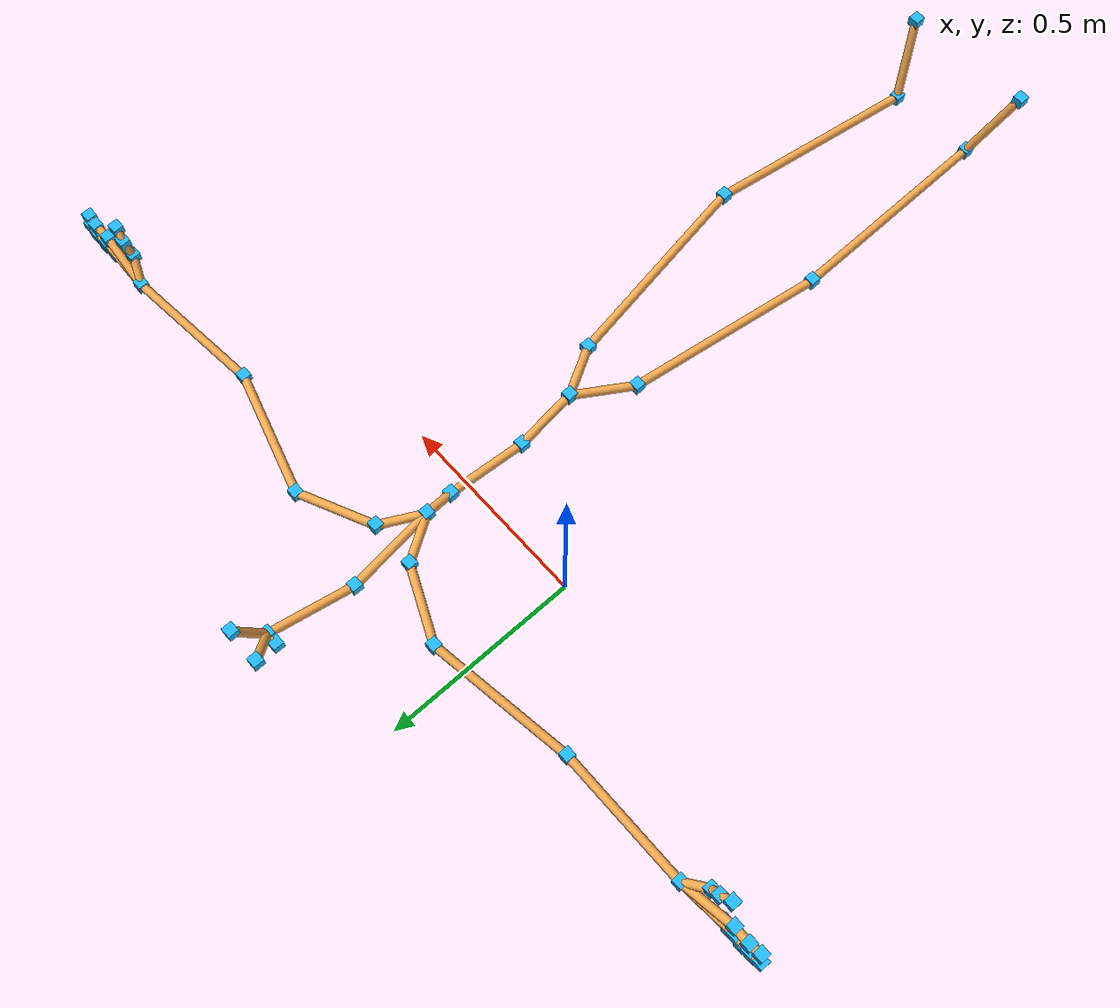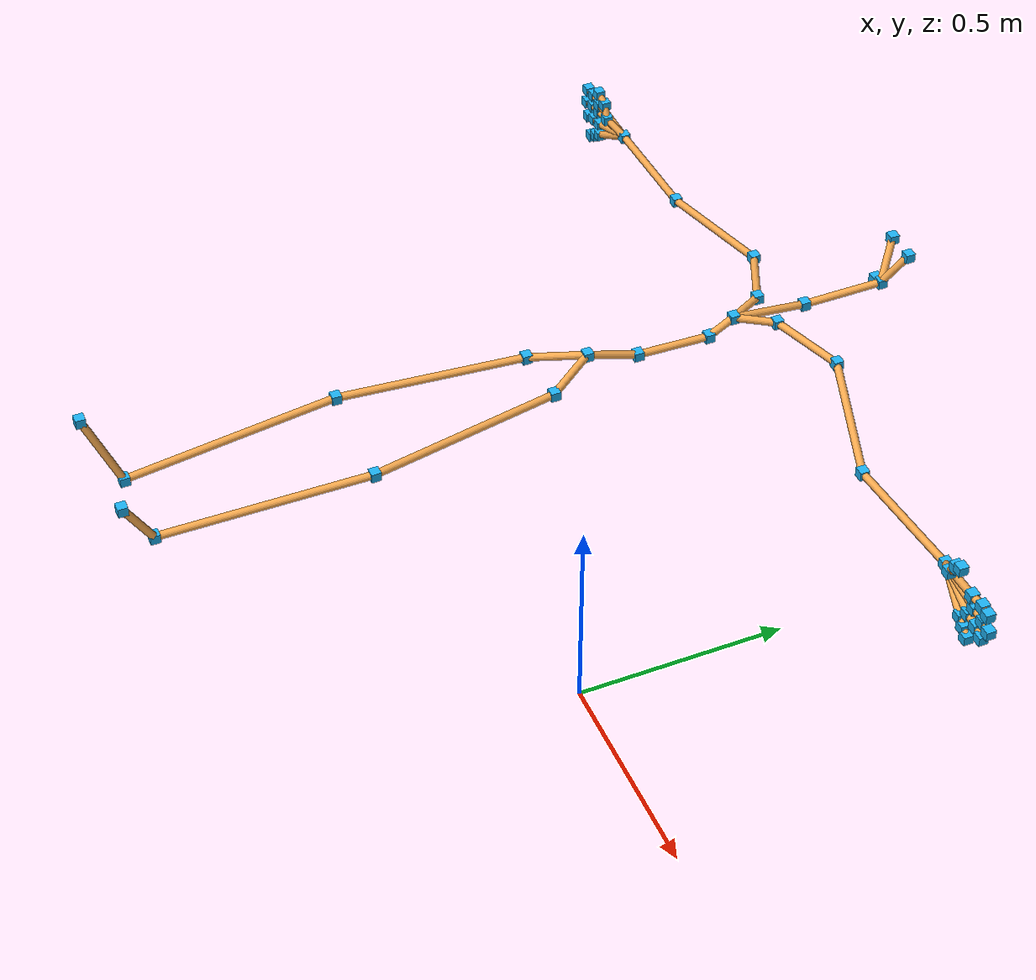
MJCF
<?xml version="1.0" encoding="UTF-8"?>
<mujoco model="smplx_male_skeleton">
  <compiler angle="radian" coordinate="local"/>
  <option timestep="0.002" gravity="0 0 -9.81"/>
  <default>
    <joint damping="1.0" armature="0.01" limited="false"/>
    <geom contype="0" conaffinity="0"/>
  </default>
  <worldbody>
    <body name="pelvis" pos="0 0 1">
      <freejoint name="root_free"/>
      <geom name="pelvis_joint" type="box" size="0.010 0.010 0.010" rgba="0.12 0.70 0.95 1"/>
      <geom name="bone_pelvis_l_hip" type="capsule" fromto="0 0 0 0.056144 -0.094542 -0.023475" size="0.008" rgba="0.95 0.65 0.30 1"/>
      <body name="l_hip" pos="0.056144 -0.094542 -0.023475">
        <joint name="l_hip_ball" type="ball" limited="true" range="0 1.40"/>
        <geom name="l_hip_joint" type="box" size="0.010 0.010 0.010" rgba="0.12 0.70 0.95 1"/>
        <geom name="bone_l_hip_l_knee" type="capsule" fromto="0 0 0 0.067229 -0.396868 -0.006654" size="0.008" rgba="0.95 0.65 0.30 1"/>
        <body name="l_knee" pos="0.067229 -0.396868 -0.006654">
          <joint name="l_knee_ball" type="hinge" axis="1 0 0" limited="true" range="0 2.44"/>
          <geom name="l_knee_joint" type="box" size="0.010 0.010 0.010" rgba="0.12 0.70 0.95 1"/>
          <geom name="bone_l_knee_l_ankle" type="capsule" fromto="0 0 0 -0.045594 -0.421286 -0.041146" size="0.008" rgba="0.95 0.65 0.30 1"/>
          <body name="l_ankle" pos="-0.045594 -0.421286 -0.041146">
            <joint name="l_ankle_ball" type="ball" limited="true" range="0 0.70"/>
            <geom name="l_ankle_joint" type="box" size="0.010 0.010 0.010" rgba="0.12 0.70 0.95 1"/>
            <geom name="bone_l_ankle_l_foot" type="capsule" fromto="0 0 0 0.044309 -0.060736 0.135157" size="0.008" rgba="0.95 0.65 0.30 1"/>
            <body name="l_foot" pos="0.044309 -0.060736 0.135157">
              <joint name="l_foot_ball" type="ball" limited="true" range="0 0.35"/>
              <geom name="l_foot_joint" type="box" size="0.010 0.010 0.010" rgba="0.12 0.70 0.95 1"/>
            </body>
          </body>
        </body>
      </body>
      <geom name="bone_pelvis_r_hip" type="capsule" fromto="0 0 0 -0.057870 -0.105167 -0.016559" size="0.008" rgba="0.95 0.65 0.30 1"/>
      <body name="r_hip" pos="-0.057870 -0.105167 -0.016559">
        <joint name="r_hip_ball" type="ball" limited="true" range="0 1.40"/>
        <geom name="r_hip_joint" type="box" size="0.010 0.010 0.010" rgba="0.12 0.70 0.95 1"/>
        <geom name="bone_r_hip_r_knee" type="capsule" fromto="0 0 0 -0.050727 -0.379821 -0.014452" size="0.008" rgba="0.95 0.65 0.30 1"/>
        <body name="r_knee" pos="-0.050727 -0.379821 -0.014452">
          <joint name="r_knee_ball" type="hinge" axis="1 0 0" limited="true" range="-2.44 0"/>
          <geom name="r_knee_joint" type="box" size="0.010 0.010 0.010" rgba="0.12 0.70 0.95 1"/>
          <geom name="bone_r_knee_r_ankle" type="capsule" fromto="0 0 0 0.017155 -0.434912 -0.039938" size="0.008" rgba="0.95 0.65 0.30 1"/>
          <body name="r_ankle" pos="0.017155 -0.434912 -0.039938">
            <joint name="r_ankle_ball" type="ball" limited="true" range="0 0.70"/>
            <geom name="r_ankle_joint" type="box" size="0.010 0.010 0.010" rgba="0.12 0.70 0.95 1"/>
            <geom name="bone_r_ankle_r_foot" type="capsule" fromto="0 0 0 -0.035444 -0.059670 0.141813" size="0.008" rgba="0.95 0.65 0.30 1"/>
            <body name="r_foot" pos="-0.035444 -0.059670 0.141813">
              <joint name="r_foot_ball" type="ball" limited="true" range="0 0.35"/>
              <geom name="r_foot_joint" type="box" size="0.010 0.010 0.010" rgba="0.12 0.70 0.95 1"/>
            </body>
          </body>
        </body>
      </body>
      <geom name="bone_pelvis_spine1" type="capsule" fromto="0 0 0 -0.001336 0.110417 -0.037925" size="0.008" rgba="0.95 0.65 0.30 1"/>
      <body name="spine1" pos="-0.001336 0.110417 -0.037925">
        <joint name="spine1_ball" type="ball" limited="true" range="0 0.35"/>
        <geom name="spine1_joint" type="box" size="0.010 0.010 0.010" rgba="0.12 0.70 0.95 1"/>
        <geom name="bone_spine1_spine2" type="capsule" fromto="0 0 0 0.010209 0.150971 0.004442" size="0.008" rgba="0.95 0.65 0.30 1"/>
        <body name="spine2" pos="0.010209 0.150971 0.004442">
          <joint name="spine2_ball" type="ball" limited="true" range="0 0.35"/>
          <geom name="spine2_joint" type="box" size="0.010 0.010 0.010" rgba="0.12 0.70 0.95 1"/>
          <geom name="bone_spine2_spine3" type="capsule" fromto="0 0 0 -0.008992 0.057847 0.022670" size="0.008" rgba="0.95 0.65 0.30 1"/>
          <body name="spine3" pos="-0.008992 0.057847 0.022670">
            <joint name="spine3_ball" type="ball" limited="true" range="0 0.30"/>
            <geom name="spine3_joint" type="box" size="0.010 0.010 0.010" rgba="0.12 0.70 0.95 1"/>
            <geom name="bone_spine3_neck" type="capsule" fromto="0 0 0 -0.009582 0.166021 -0.027240" size="0.008" rgba="0.95 0.65 0.30 1"/>
            <body name="neck" pos="-0.009582 0.166021 -0.027240">
              <joint name="neck_ball" type="ball" limited="true" range="0 0.87"/>
              <geom name="neck_joint" type="box" size="0.010 0.010 0.010" rgba="0.12 0.70 0.95 1"/>
              <geom name="bone_neck_head" type="capsule" fromto="0 0 0 0.022904 0.160720 0.022940" size="0.008" rgba="0.95 0.65 0.30 1"/>
              <body name="head" pos="0.022904 0.160720 0.022940">
                <joint name="head_ball" type="ball" limited="true" range="0 0.52"/>
                <geom name="head_joint" type="box" size="0.010 0.010 0.010" rgba="0.12 0.70 0.95 1"/>
                <geom name="bone_head_jaw" type="capsule" fromto="0 0 0 -0.020704 -0.000888 -0.006180" size="0.008" rgba="0.95 0.65 0.30 1"/>
                <body name="jaw" pos="-0.020704 -0.000888 -0.006180">
                  <joint name="jaw_ball" type="ball" limited="true" range="0 0.35"/>
                  <geom name="jaw_joint" type="box" size="0.010 0.010 0.010" rgba="0.12 0.70 0.95 1"/>
                </body>
                <geom name="bone_head_l_eye" type="capsule" fromto="0 0 0 0.018105 0.045420 0.065838" size="0.008" rgba="0.95 0.65 0.30 1"/>
                <body name="l_eye" pos="0.018105 0.045420 0.065838">
                  <joint name="l_eye_ball" type="ball" limited="true" range="0 0.52"/>
                  <geom name="l_eye_joint" type="box" size="0.010 0.010 0.010" rgba="0.12 0.70 0.95 1"/>
                </body>
                <geom name="bone_head_r_eye" type="capsule" fromto="0 0 0 -0.046846 0.045420 0.065837" size="0.008" rgba="0.95 0.65 0.30 1"/>
                <body name="r_eye" pos="-0.046846 0.045420 0.065837">
                  <joint name="r_eye_ball" type="ball" limited="true" range="0 0.52"/>
                  <geom name="r_eye_joint" type="box" size="0.010 0.010 0.010" rgba="0.12 0.70 0.95 1"/>
                </body>
              </body>
            </body>
            <geom name="bone_spine3_l_collar" type="capsule" fromto="0 0 0 0.042421 0.076277 -0.005255" size="0.008" rgba="0.95 0.65 0.30 1"/>
            <body name="l_collar" pos="0.042421 0.076277 -0.005255">
              <joint name="l_collar_ball" type="ball" limited="true" range="0 0.26"/>
              <geom name="l_collar_joint" type="box" size="0.010 0.010 0.010" rgba="0.12 0.70 0.95 1"/>
              <geom name="bone_l_collar_l_shoulder" type="capsule" fromto="0 0 0 0.140946 0.060417 -0.014899" size="0.008" rgba="0.95 0.65 0.30 1"/>
              <body name="l_shoulder" pos="0.140946 0.060417 -0.014899">
                <joint name="l_shoulder_ball" type="ball" limited="true" range="0 1.92"/>
                <geom name="l_shoulder_joint" type="box" size="0.010 0.010 0.010" rgba="0.12 0.70 0.95 1"/>
                <geom name="bone_l_shoulder_l_elbow" type="capsule" fromto="0 0 0 0.254749 -0.076166 -0.045492" size="0.008" rgba="0.95 0.65 0.30 1"/>
                <body name="l_elbow" pos="0.254749 -0.076166 -0.045492">
                  <joint name="l_elbow_ball" type="hinge" axis="0 0 1" limited="true" range="-2.53 0"/>
                  <geom name="l_elbow_joint" type="box" size="0.010 0.010 0.010" rgba="0.12 0.70 0.95 1"/>
                  <geom name="bone_l_elbow_l_wrist" type="capsule" fromto="0 0 0 0.271604 0.025613 -0.000648" size="0.008" rgba="0.95 0.65 0.30 1"/>
                  <body name="l_wrist" pos="0.271604 0.025613 -0.000648">
                    <joint name="l_wrist_ball" type="ball" limited="true" range="0 1.05"/>
                    <geom name="l_wrist_joint" type="box" size="0.010 0.010 0.010" rgba="0.12 0.70 0.95 1"/>
                    <geom name="bone_l_wrist_l_index1" type="capsule" fromto="0 0 0 0.106087 -0.008586 0.021057" size="0.008" rgba="0.95 0.65 0.30 1"/>
                    <body name="l_index1" pos="0.106087 -0.008586 0.021057">
                      <joint name="l_index1_ball" type="ball" limited="true" range="0 0.52"/>
                      <geom name="l_index1_joint" type="box" size="0.010 0.010 0.010" rgba="0.12 0.70 0.95 1"/>
                      <geom name="bone_l_index1_l_index2" type="capsule" fromto="0 0 0 0.033334 0.001640 0.003654" size="0.008" rgba="0.95 0.65 0.30 1"/>
                      <body name="l_index2" pos="0.033334 0.001640 0.003654">
                        <joint name="l_index2_ball" type="hinge" axis="0 0 1" limited="true" range="-1.57 0"/>
                        <geom name="l_index2_joint" type="box" size="0.010 0.010 0.010" rgba="0.12 0.70 0.95 1"/>
                        <geom name="bone_l_index2_l_index3" type="capsule" fromto="0 0 0 0.023496 -0.002705 -0.000222" size="0.008" rgba="0.95 0.65 0.30 1"/>
                        <body name="l_index3" pos="0.023496 -0.002705 -0.000222">
                          <joint name="l_index3_ball" type="hinge" axis="0 0 1" limited="true" range="-1.57 0"/>
                          <geom name="l_index3_joint" type="box" size="0.010 0.010 0.010" rgba="0.12 0.70 0.95 1"/>
                        </body>
                      </body>
                    </body>
                    <geom name="bone_l_wrist_l_middle1" type="capsule" fromto="0 0 0 0.114220 -0.005852 -0.003961" size="0.008" rgba="0.95 0.65 0.30 1"/>
                    <body name="l_middle1" pos="0.114220 -0.005852 -0.003961">
                      <joint name="l_middle1_ball" type="ball" limited="true" range="0 0.52"/>
                      <geom name="l_middle1_joint" type="box" size="0.010 0.010 0.010" rgba="0.12 0.70 0.95 1"/>
                      <geom name="bone_l_middle1_l_middle2" type="capsule" fromto="0 0 0 0.031850 0.000421 -0.004450" size="0.008" rgba="0.95 0.65 0.30 1"/>
                      <body name="l_middle2" pos="0.031850 0.000421 -0.004450">
                        <joint name="l_middle2_ball" type="hinge" axis="0 0 1" limited="true" range="-1.57 0"/>
                        <geom name="l_middle2_joint" type="box" size="0.010 0.010 0.010" rgba="0.12 0.70 0.95 1"/>
                        <geom name="bone_l_middle2_l_middle3" type="capsule" fromto="0 0 0 0.024356 -0.002530 -0.004432" size="0.008" rgba="0.95 0.65 0.30 1"/>
                        <body name="l_middle3" pos="0.024356 -0.002530 -0.004432">
                          <joint name="l_middle3_ball" type="hinge" axis="0 0 1" limited="true" range="-1.57 0"/>
                          <geom name="l_middle3_joint" type="box" size="0.010 0.010 0.010" rgba="0.12 0.70 0.95 1"/>
                        </body>
                      </body>
                    </body>
                    <geom name="bone_l_wrist_l_pinky1" type="capsule" fromto="0 0 0 0.088138 -0.014748 -0.046496" size="0.008" rgba="0.95 0.65 0.30 1"/>
                    <body name="l_pinky1" pos="0.088138 -0.014748 -0.046496">
                      <joint name="l_pinky1_ball" type="ball" limited="true" range="0 0.52"/>
                      <geom name="l_pinky1_joint" type="box" size="0.010 0.010 0.010" rgba="0.12 0.70 0.95 1"/>
                      <geom name="bone_l_pinky1_l_pinky2" type="capsule" fromto="0 0 0 0.016998 -0.001738 -0.012036" size="0.008" rgba="0.95 0.65 0.30 1"/>
                      <body name="l_pinky2" pos="0.016998 -0.001738 -0.012036">
                        <joint name="l_pinky2_ball" type="hinge" axis="0 0 1" limited="true" range="-1.57 0"/>
                        <geom name="l_pinky2_joint" type="box" size="0.010 0.010 0.010" rgba="0.12 0.70 0.95 1"/>
                        <geom name="bone_l_pinky2_l_pinky3" type="capsule" fromto="0 0 0 0.016655 -0.002018 -0.011200" size="0.008" rgba="0.95 0.65 0.30 1"/>
                        <body name="l_pinky3" pos="0.016655 -0.002018 -0.011200">
                          <joint name="l_pinky3_ball" type="hinge" axis="0 0 1" limited="true" range="-1.57 0"/>
                          <geom name="l_pinky3_joint" type="box" size="0.010 0.010 0.010" rgba="0.12 0.70 0.95 1"/>
                        </body>
                      </body>
                    </body>
                    <geom name="bone_l_wrist_l_ring1" type="capsule" fromto="0 0 0 0.101918 -0.008948 -0.028942" size="0.008" rgba="0.95 0.65 0.30 1"/>
                    <body name="l_ring1" pos="0.101918 -0.008948 -0.028942">
                      <joint name="l_ring1_ball" type="ball" limited="true" range="0 0.52"/>
                      <geom name="l_ring1_joint" type="box" size="0.010 0.010 0.010" rgba="0.12 0.70 0.95 1"/>
                      <geom name="bone_l_ring1_l_ring2" type="capsule" fromto="0 0 0 0.029584 0.000639 -0.005070" size="0.008" rgba="0.95 0.65 0.30 1"/>
                      <body name="l_ring2" pos="0.029584 0.000639 -0.005070">
                        <joint name="l_ring2_ball" type="hinge" axis="0 0 1" limited="true" range="-1.57 0"/>
                        <geom name="l_ring2_joint" type="box" size="0.010 0.010 0.010" rgba="0.12 0.70 0.95 1"/>
                        <geom name="bone_l_ring2_l_ring3" type="capsule" fromto="0 0 0 0.023939 -0.002336 -0.006838" size="0.008" rgba="0.95 0.65 0.30 1"/>
                        <body name="l_ring3" pos="0.023939 -0.002336 -0.006838">
                          <joint name="l_ring3_ball" type="hinge" axis="0 0 1" limited="true" range="-1.57 0"/>
                          <geom name="l_ring3_joint" type="box" size="0.010 0.010 0.010" rgba="0.12 0.70 0.95 1"/>
                        </body>
                      </body>
                    </body>
                    <geom name="bone_l_wrist_l_thumb1" type="capsule" fromto="0 0 0 0.041726 -0.020077 0.027704" size="0.008" rgba="0.95 0.65 0.30 1"/>
                    <body name="l_thumb1" pos="0.041726 -0.020077 0.027704">
                      <joint name="l_thumb1_ball" type="ball" limited="true" range="0 0.70"/>
                      <geom name="l_thumb1_joint" type="box" size="0.010 0.010 0.010" rgba="0.12 0.70 0.95 1"/>
                      <geom name="bone_l_thumb1_l_thumb2" type="capsule" fromto="0 0 0 0.017133 0.001827 0.027284" size="0.008" rgba="0.95 0.65 0.30 1"/>
                      <body name="l_thumb2" pos="0.017133 0.001827 0.027284">
                        <joint name="l_thumb2_ball" type="hinge" axis="0 1 0" limited="true" range="-1.22 0"/>
                        <geom name="l_thumb2_joint" type="box" size="0.010 0.010 0.010" rgba="0.12 0.70 0.95 1"/>
                        <geom name="bone_l_thumb2_l_thumb3" type="capsule" fromto="0 0 0 0.020929 -0.004745 0.017044" size="0.008" rgba="0.95 0.65 0.30 1"/>
                        <body name="l_thumb3" pos="0.020929 -0.004745 0.017044">
                          <joint name="l_thumb3_ball" type="hinge" axis="0 1 0" limited="true" range="-1.22 0"/>
                          <geom name="l_thumb3_joint" type="box" size="0.010 0.010 0.010" rgba="0.12 0.70 0.95 1"/>
                        </body>
                      </body>
                    </body>
                  </body>
                </body>
              </body>
            </body>
            <geom name="bone_spine3_r_collar" type="capsule" fromto="0 0 0 -0.046077 0.076816 -0.008529" size="0.008" rgba="0.95 0.65 0.30 1"/>
            <body name="r_collar" pos="-0.046077 0.076816 -0.008529">
              <joint name="r_collar_ball" type="ball" limited="true" range="0 0.26"/>
              <geom name="r_collar_joint" type="box" size="0.010 0.010 0.010" rgba="0.12 0.70 0.95 1"/>
              <geom name="bone_r_collar_r_shoulder" type="capsule" fromto="0 0 0 -0.130355 0.058849 -0.012586" size="0.008" rgba="0.95 0.65 0.30 1"/>
              <body name="r_shoulder" pos="-0.130355 0.058849 -0.012586">
                <joint name="r_shoulder_ball" type="ball" limited="true" range="0 1.92"/>
                <geom name="r_shoulder_joint" type="box" size="0.010 0.010 0.010" rgba="0.12 0.70 0.95 1"/>
                <geom name="bone_r_shoulder_r_elbow" type="capsule" fromto="0 0 0 -0.272493 -0.045926 -0.032429" size="0.008" rgba="0.95 0.65 0.30 1"/>
                <body name="r_elbow" pos="-0.272493 -0.045926 -0.032429">
                  <joint name="r_elbow_ball" type="hinge" axis="0 0 1" limited="true" range="0 2.53"/>
                  <geom name="r_elbow_joint" type="box" size="0.010 0.010 0.010" rgba="0.12 0.70 0.95 1"/>
                  <geom name="bone_r_elbow_r_wrist" type="capsule" fromto="0 0 0 -0.263379 0.000029 -0.011822" size="0.008" rgba="0.95 0.65 0.30 1"/>
                  <body name="r_wrist" pos="-0.263379 0.000029 -0.011822">
                    <joint name="r_wrist_ball" type="ball" limited="true" range="0 1.05"/>
                    <geom name="r_wrist_joint" type="box" size="0.010 0.010 0.010" rgba="0.12 0.70 0.95 1"/>
                    <geom name="bone_r_wrist_r_index1" type="capsule" fromto="0 0 0 -0.105598 -0.012210 0.020131" size="0.008" rgba="0.95 0.65 0.30 1"/>
                    <body name="r_index1" pos="-0.105598 -0.012210 0.020131">
                      <joint name="r_index1_ball" type="ball" limited="true" range="0 0.52"/>
                      <geom name="r_index1_joint" type="box" size="0.010 0.010 0.010" rgba="0.12 0.70 0.95 1"/>
                      <geom name="bone_r_index1_r_index2" type="capsule" fromto="0 0 0 -0.033335 0.001640 0.003654" size="0.008" rgba="0.95 0.65 0.30 1"/>
                      <body name="r_index2" pos="-0.033335 0.001640 0.003654">
                        <joint name="r_index2_ball" type="hinge" axis="0 0 1" limited="true" range="0 1.57"/>
                        <geom name="r_index2_joint" type="box" size="0.010 0.010 0.010" rgba="0.12 0.70 0.95 1"/>
                        <geom name="bone_r_index2_r_index3" type="capsule" fromto="0 0 0 -0.023497 -0.002706 -0.000223" size="0.008" rgba="0.95 0.65 0.30 1"/>
                        <body name="r_index3" pos="-0.023497 -0.002706 -0.000223">
                          <joint name="r_index3_ball" type="hinge" axis="0 0 1" limited="true" range="0 1.57"/>
                          <geom name="r_index3_joint" type="box" size="0.010 0.010 0.010" rgba="0.12 0.70 0.95 1"/>
                        </body>
                      </body>
                    </body>
                    <geom name="bone_r_wrist_r_middle1" type="capsule" fromto="0 0 0 -0.113733 -0.009477 -0.004889" size="0.008" rgba="0.95 0.65 0.30 1"/>
                    <body name="r_middle1" pos="-0.113733 -0.009477 -0.004889">
                      <joint name="r_middle1_ball" type="ball" limited="true" range="0 0.52"/>
                      <geom name="r_middle1_joint" type="box" size="0.010 0.010 0.010" rgba="0.12 0.70 0.95 1"/>
                      <geom name="bone_r_middle1_r_middle2" type="capsule" fromto="0 0 0 -0.031850 0.000419 -0.004451" size="0.008" rgba="0.95 0.65 0.30 1"/>
                      <body name="r_middle2" pos="-0.031850 0.000419 -0.004451">
                        <joint name="r_middle2_ball" type="hinge" axis="0 0 1" limited="true" range="0 1.57"/>
                        <geom name="r_middle2_joint" type="box" size="0.010 0.010 0.010" rgba="0.12 0.70 0.95 1"/>
                        <geom name="bone_r_middle2_r_middle3" type="capsule" fromto="0 0 0 -0.024356 -0.002530 -0.004432" size="0.008" rgba="0.95 0.65 0.30 1"/>
                        <body name="r_middle3" pos="-0.024356 -0.002530 -0.004432">
                          <joint name="r_middle3_ball" type="hinge" axis="0 0 1" limited="true" range="0 1.57"/>
                          <geom name="r_middle3_joint" type="box" size="0.010 0.010 0.010" rgba="0.12 0.70 0.95 1"/>
                        </body>
                      </body>
                    </body>
                    <geom name="bone_r_wrist_r_pinky1" type="capsule" fromto="0 0 0 -0.087654 -0.018375 -0.047425" size="0.008" rgba="0.95 0.65 0.30 1"/>
                    <body name="r_pinky1" pos="-0.087654 -0.018375 -0.047425">
                      <joint name="r_pinky1_ball" type="ball" limited="true" range="0 0.52"/>
                      <geom name="r_pinky1_joint" type="box" size="0.010 0.010 0.010" rgba="0.12 0.70 0.95 1"/>
                      <geom name="bone_r_pinky1_r_pinky2" type="capsule" fromto="0 0 0 -0.016998 -0.001738 -0.012035" size="0.008" rgba="0.95 0.65 0.30 1"/>
                      <body name="r_pinky2" pos="-0.016998 -0.001738 -0.012035">
                        <joint name="r_pinky2_ball" type="hinge" axis="0 0 1" limited="true" range="0 1.57"/>
                        <geom name="r_pinky2_joint" type="box" size="0.010 0.010 0.010" rgba="0.12 0.70 0.95 1"/>
                        <geom name="bone_r_pinky2_r_pinky3" type="capsule" fromto="0 0 0 -0.016654 -0.002019 -0.011200" size="0.008" rgba="0.95 0.65 0.30 1"/>
                        <body name="r_pinky3" pos="-0.016654 -0.002019 -0.011200">
                          <joint name="r_pinky3_ball" type="hinge" axis="0 0 1" limited="true" range="0 1.57"/>
                          <geom name="r_pinky3_joint" type="box" size="0.010 0.010 0.010" rgba="0.12 0.70 0.95 1"/>
                        </body>
                      </body>
                    </body>
                    <geom name="bone_r_wrist_r_ring1" type="capsule" fromto="0 0 0 -0.101432 -0.012574 -0.029871" size="0.008" rgba="0.95 0.65 0.30 1"/>
                    <body name="r_ring1" pos="-0.101432 -0.012574 -0.029871">
                      <joint name="r_ring1_ball" type="ball" limited="true" range="0 0.52"/>
                      <geom name="r_ring1_joint" type="box" size="0.010 0.010 0.010" rgba="0.12 0.70 0.95 1"/>
                      <geom name="bone_r_ring1_r_ring2" type="capsule" fromto="0 0 0 -0.029584 0.000639 -0.005069" size="0.008" rgba="0.95 0.65 0.30 1"/>
                      <body name="r_ring2" pos="-0.029584 0.000639 -0.005069">
                        <joint name="r_ring2_ball" type="hinge" axis="0 0 1" limited="true" range="0 1.57"/>
                        <geom name="r_ring2_joint" type="box" size="0.010 0.010 0.010" rgba="0.12 0.70 0.95 1"/>
                        <geom name="bone_r_ring2_r_ring3" type="capsule" fromto="0 0 0 -0.023938 -0.002337 -0.006839" size="0.008" rgba="0.95 0.65 0.30 1"/>
                        <body name="r_ring3" pos="-0.023938 -0.002337 -0.006839">
                          <joint name="r_ring3_ball" type="hinge" axis="0 0 1" limited="true" range="0 1.57"/>
                          <geom name="r_ring3_joint" type="box" size="0.010 0.010 0.010" rgba="0.12 0.70 0.95 1"/>
                        </body>
                      </body>
                    </body>
                    <geom name="bone_r_wrist_r_thumb1" type="capsule" fromto="0 0 0 -0.041237 -0.023705 0.026778" size="0.008" rgba="0.95 0.65 0.30 1"/>
                    <body name="r_thumb1" pos="-0.041237 -0.023705 0.026778">
                      <joint name="r_thumb1_ball" type="ball" limited="true" range="0 0.70"/>
                      <geom name="r_thumb1_joint" type="box" size="0.010 0.010 0.010" rgba="0.12 0.70 0.95 1"/>
                      <geom name="bone_r_thumb1_r_thumb2" type="capsule" fromto="0 0 0 -0.017132 0.001828 0.027283" size="0.008" rgba="0.95 0.65 0.30 1"/>
                      <body name="r_thumb2" pos="-0.017132 0.001828 0.027283">
                        <joint name="r_thumb2_ball" type="hinge" axis="0 1 0" limited="true" range="0 1.22"/>
                        <geom name="r_thumb2_joint" type="box" size="0.010 0.010 0.010" rgba="0.12 0.70 0.95 1"/>
                        <geom name="bone_r_thumb2_r_thumb3" type="capsule" fromto="0 0 0 -0.020930 -0.004743 0.017043" size="0.008" rgba="0.95 0.65 0.30 1"/>
                        <body name="r_thumb3" pos="-0.020930 -0.004743 0.017043">
                          <joint name="r_thumb3_ball" type="hinge" axis="0 1 0" limited="true" range="0 1.22"/>
                          <geom name="r_thumb3_joint" type="box" size="0.010 0.010 0.010" rgba="0.12 0.70 0.95 1"/>
                        </body>
                      </body>
                    </body>
                  </body>
                </body>
              </body>
            </body>
          </body>
        </body>
      </body>
    </body>
  </worldbody>
</mujoco>
